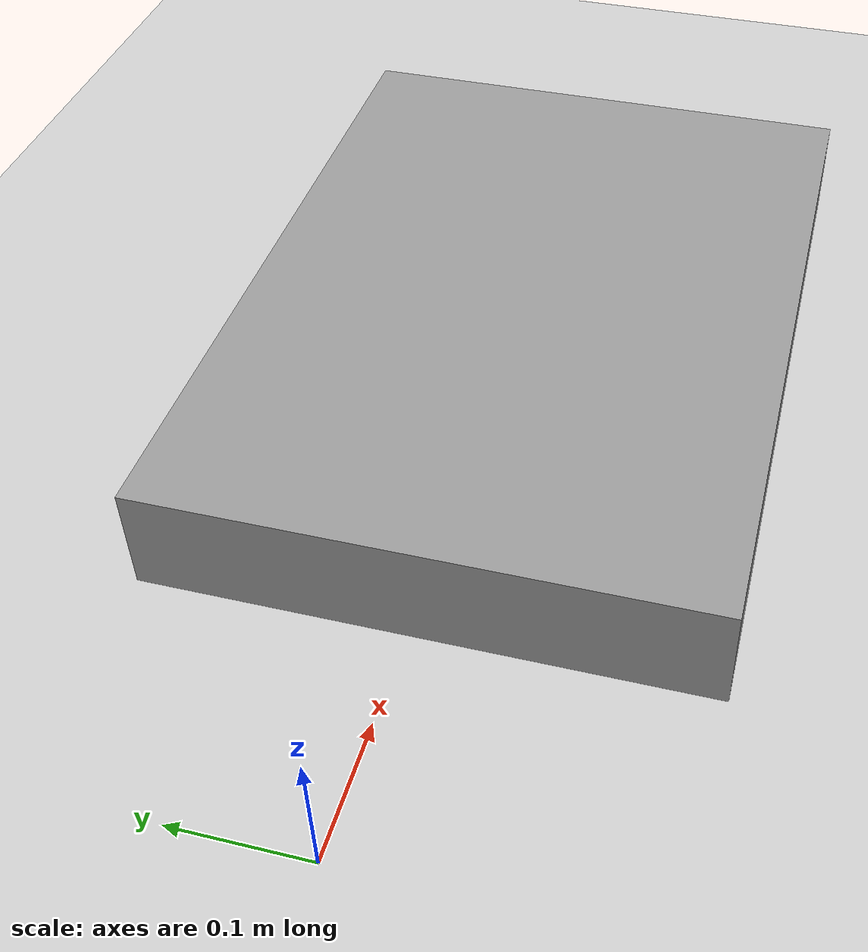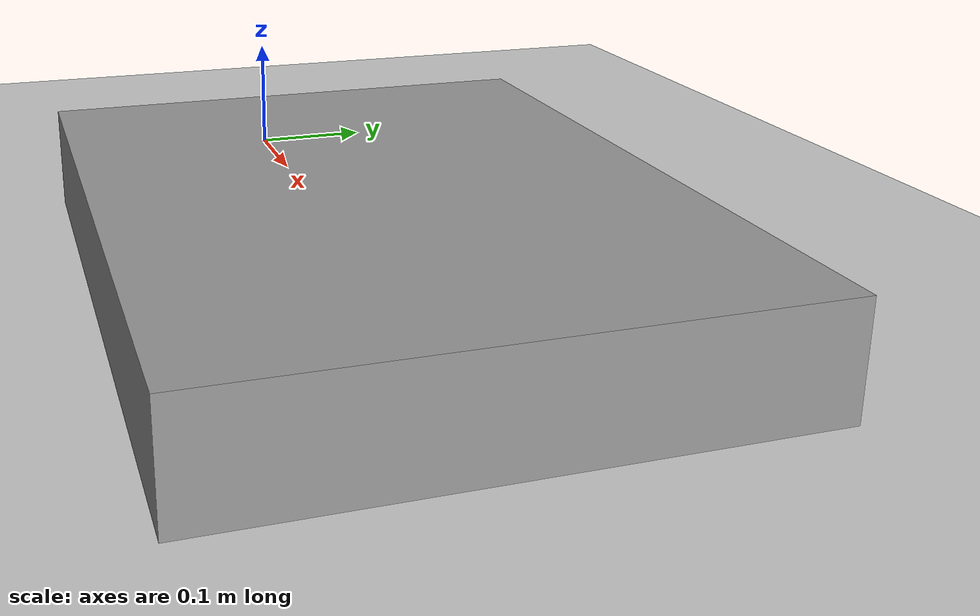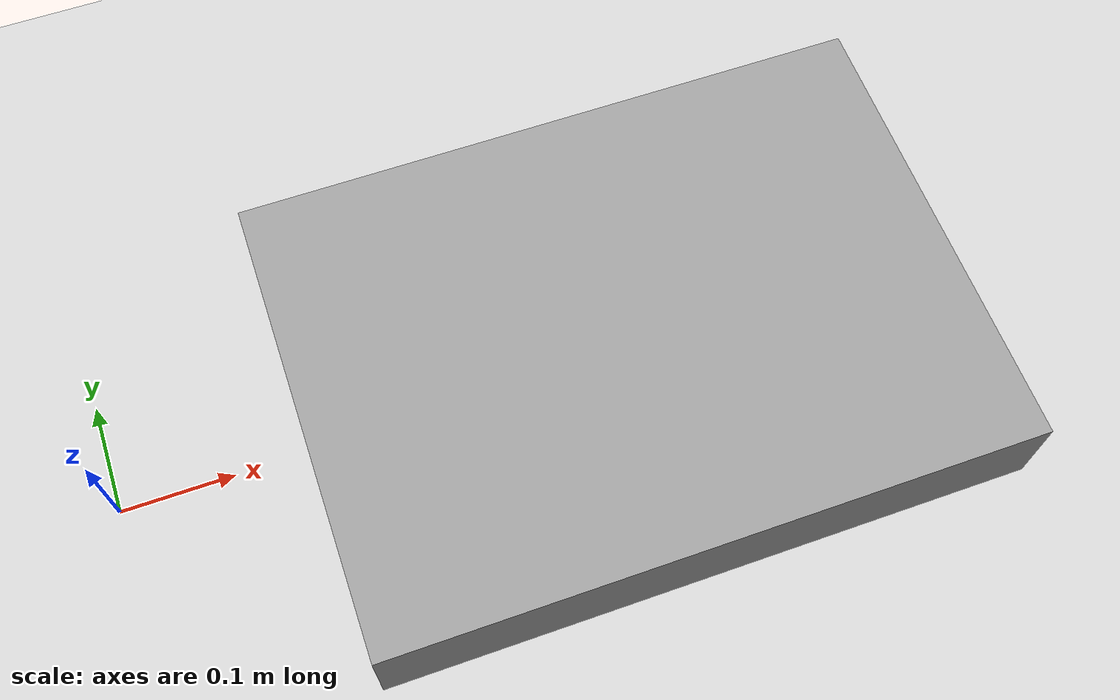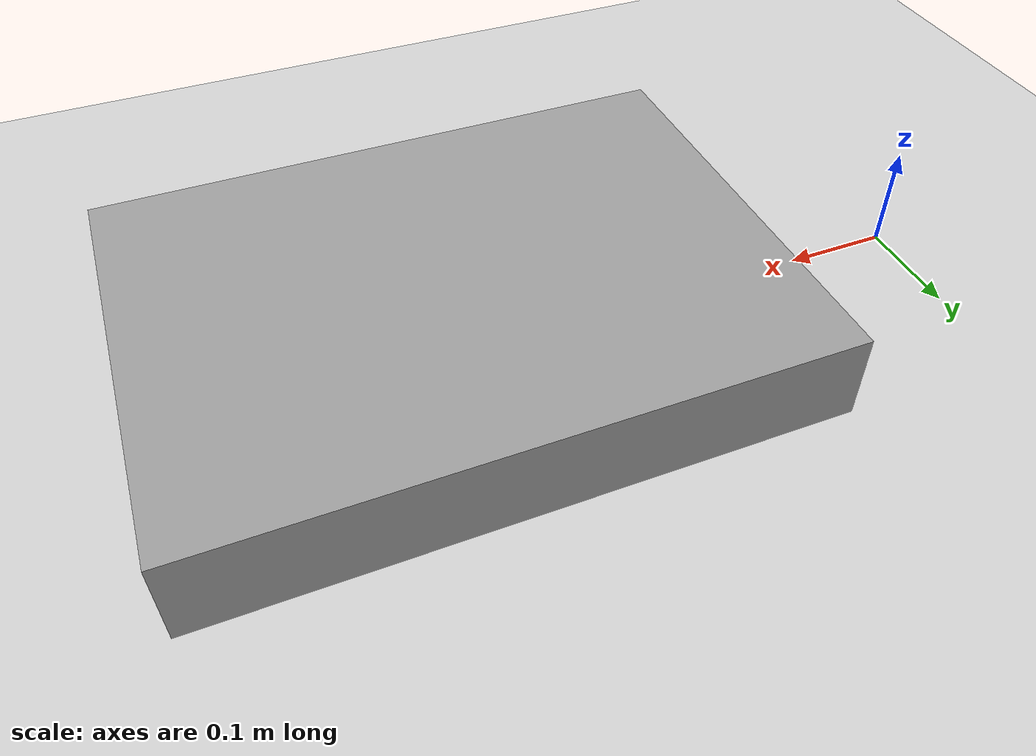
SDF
<?xml version="1.0" ?>
<sdf version="1.6">
  <world name="polish_table">
    <!--A global light source-->
    <include>
      <uri>model://sun</uri>
    </include>
    <!--A ground plane-->
    <include>
      <uri>model://ground_plane</uri>
    </include>
    <!--A Table-->
    <include>
      <uri>model://unit_box</uri>
      <pose>1.041886 -2.412969 0.510451 0 -0 0</pose>
      <static>1</static>
    </include>
  </world>
</sdf>

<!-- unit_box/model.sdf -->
<sdf version='1.7'>
  <model name='unit_box'>
    <link name='link'>
      <inertial>
        <mass>0.0193494</mass>
        <inertia>
          <ixx>0.000285628</ixx>
          <ixy>0</ixy>
          <ixz>0</ixz>
          <iyy>0.000524553</iyy>
          <iyz>0</iyz>
          <izz>0.000787958</izz>
        </inertia>
        <pose>0 0 0 0 -0 0</pose>
      </inertial>
      <self_collide>0</self_collide>
      <enable_wind>0</enable_wind>
      <kinematic>0</kinematic>
      <pose>-0.592071 2.40121 -0.4618 0 -0 0</pose>
      <visual name='visual'>
        <geometry>
          <box>
            <size>0.56429 0.412611 0.083011</size>
          </box>
        </geometry>
        <material>
          <script>
            <name>Gazebo/Grey</name>
            <uri>file://media/materials/scripts/gazebo.material</uri>
          </script>
          <shader type='pixel'/>
        </material>
        <pose>0 0 0 0 -0 0</pose>
        <transparency>0</transparency>
        <cast_shadows>1</cast_shadows>
      </visual>
      <collision name='collision'>
        <laser_retro>0</laser_retro>
        <max_contacts>10</max_contacts>
        <pose>0 0 0 0 -0 0</pose>
        <geometry>
          <box>
            <size>0.56429 0.412611 0.083011</size>
          </box>
        </geometry>
        <surface>
          <friction>
            <ode>
              <mu>1</mu>
              <mu2>1</mu2>
              <fdir1>0 0 0</fdir1>
              <slip1>0</slip1>
              <slip2>0</slip2>
            </ode>
            <torsional>
              <coefficient>1</coefficient>
              <patch_radius>0</patch_radius>
              <surface_radius>0</surface_radius>
              <use_patch_radius>1</use_patch_radius>
              <ode>
                <slip>0</slip>
              </ode>
            </torsional>
          </friction>
          <bounce>
            <restitution_coefficient>0</restitution_coefficient>
            <threshold>1e+06</threshold>
          </bounce>
          <contact>
            <collide_without_contact>0</collide_without_contact>
            <collide_without_contact_bitmask>1</collide_without_contact_bitmask>
            <collide_bitmask>1</collide_bitmask>
            <ode>
              <soft_cfm>0</soft_cfm>
              <soft_erp>0.2</soft_erp>
              <kp>1e+13</kp>
              <kd>1</kd>
              <max_vel>0.01</max_vel>
              <min_depth>0</min_depth>
            </ode>
            <bullet>
              <split_impulse>1</split_impulse>
              <split_impulse_penetration_threshold>-0.01</split_impulse_penetration_threshold>
              <soft_cfm>0</soft_cfm>
              <soft_erp>0.2</soft_erp>
              <kp>1e+13</kp>
              <kd>1</kd>
            </bullet>
          </contact>
        </surface>
      </collision>
    </link>
    <static>0</static>
    <allow_auto_disable>1</allow_auto_disable>
  </model>
</sdf>
